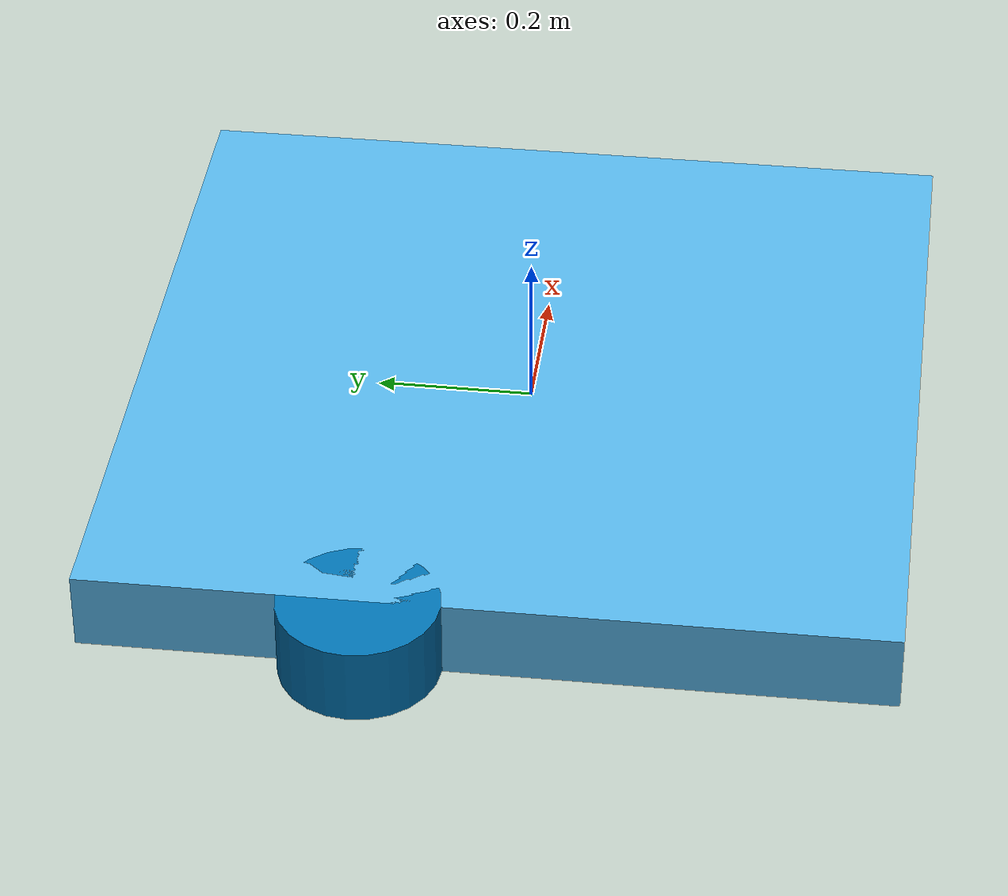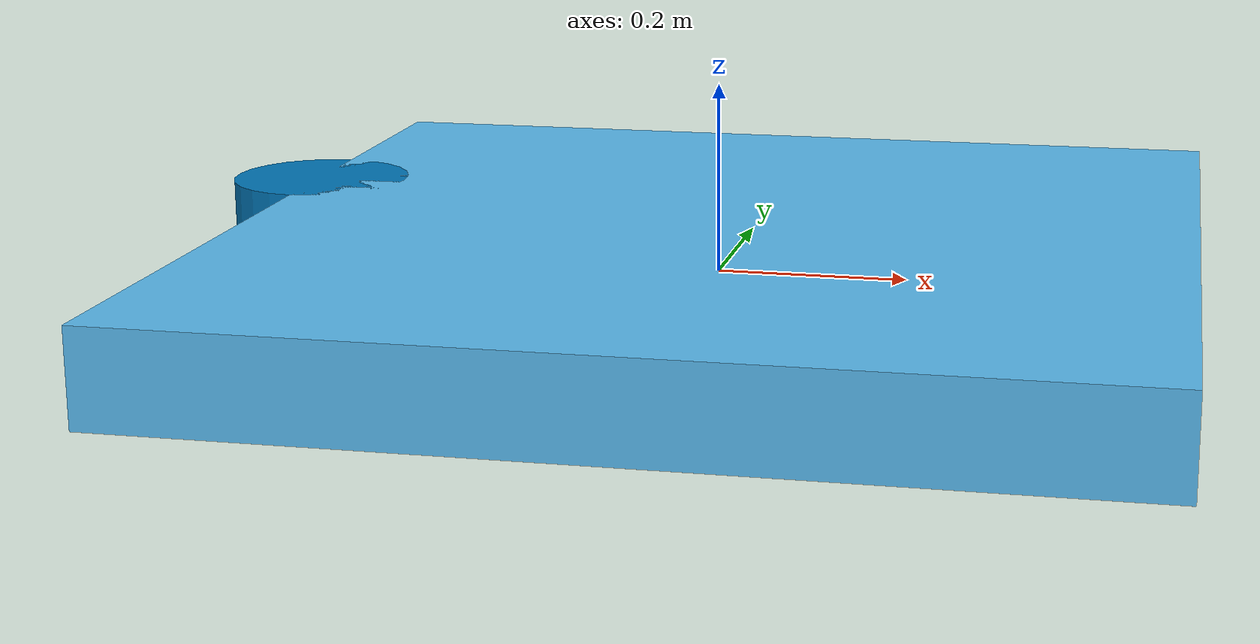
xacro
<?xml version="1.0"?>
<robot xmlns:xacro="http://www.ros.org/wiki/xacro" name="robot">
    <xacro:include filename="$(find usv_hardware)/control/usv_core.xacro" />
    <!-- find语法可以找到包目录，具有移植性 -->
    <xacro:include filename="$(find usv_hardware)/description/control.xacro" />

    <xacro:usv_base />
    <xacro:usv_hardware />

</robot>

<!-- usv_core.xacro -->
<robot xmlns:xacro="http://www.ros.org/wiki/xacro">
  <xacro:macro name="usv_base">
    <!-- Base Link -->
    <link name="base_link">
    </link>

    <!-- base_footprint_joint -->
    <joint name="base_footprint_joint" type="fixed">
      <parent link="base_link"/>
      <child link="base_footprint"/>
      <origin xyz="0 0 0" rpy="0 0 0"/>
    </joint>

    <!-- Base Footprint -->
    <link name="base_footprint">
      <visual>
        <geometry>
          <box size="1 1 0.1"/>
        </geometry>
      </visual>
      <collision>
        <geometry>
          <box size="1 1 0.1"/>
        </geometry>
      </collision>
    </link>

    <joint name="magnetometer_joint" type="fixed">
      <parent link="base_link"/>
      <child link="magnetometer_link"/>
      <origin xyz="0 0 0" rpy="0 0 -1.5708" /> <!-- RPY中的 -1.5708 约等于 -90度 -->
    </joint>
    <link name="magnetometer_link"></link>

    <joint name="laser" type="fixed">
      <parent link="base_footprint"/>
      <child link="laser"/>
      <origin xyz="0 0 0" rpy="0 0 0"/>
    </joint>

    <link name="laser"></link>

    <!-- Left Motor -->
    <link name="left_motor">
      <visual>
        <geometry>
          <cylinder length="0.1" radius="0.1"/>
        </geometry>
      </visual>
      <collision>
        <geometry>
          <cylinder length="0.1" radius="0.1"/>
        </geometry>
      </collision>
    </link>

    <!-- Right Motor -->
    <link name="right_motor">
      <visual>
        <geometry>
          <cylinder length="0.1" radius="0.1"/>
        </geometry>
      </visual>
      <collision>
        <geometry>
          <cylinder length="0.1" radius="0.1"/>
        </geometry>
      </collision>
    </link>

    <!-- Motor Joints -->
    <joint name="left_motor_joint" type="fixed">
      <parent link="base_link"/>
      <child link="left_motor"/>
      <origin xyz="-0.5 0.15 0" rpy="0 0 0"/>
    </joint>

    <joint name="right_motor_joint" type="fixed">
      <parent link="base_link"/>
      <child link="right_motor"/>
      <origin xyz="-0.5 0.15 0" rpy="0 0 0"/>
    </joint>
  </xacro:macro>

</robot>
